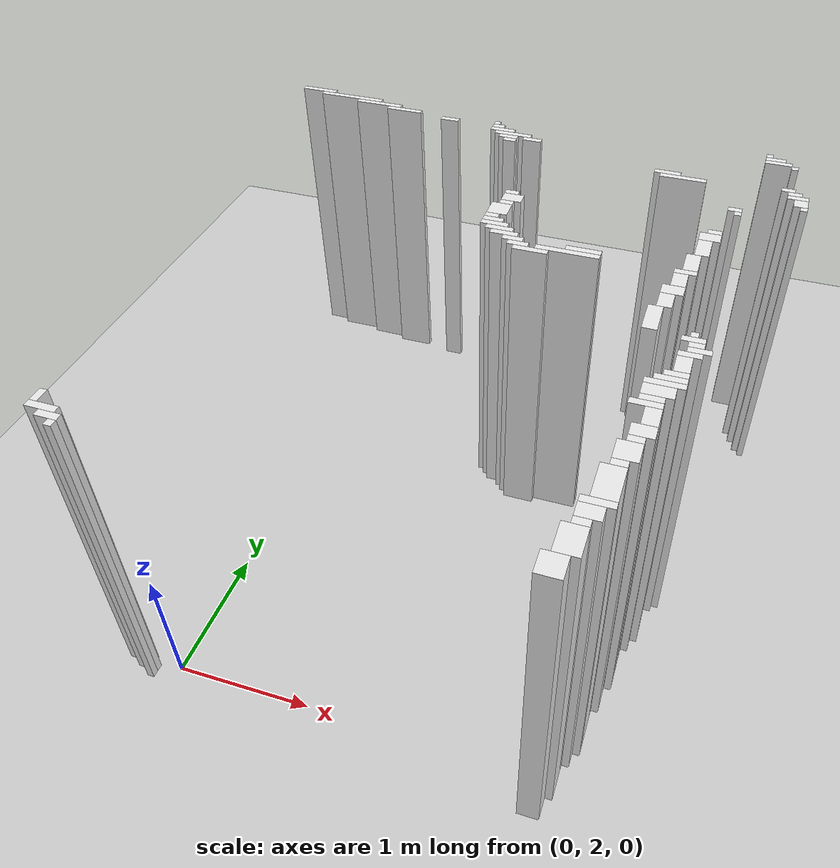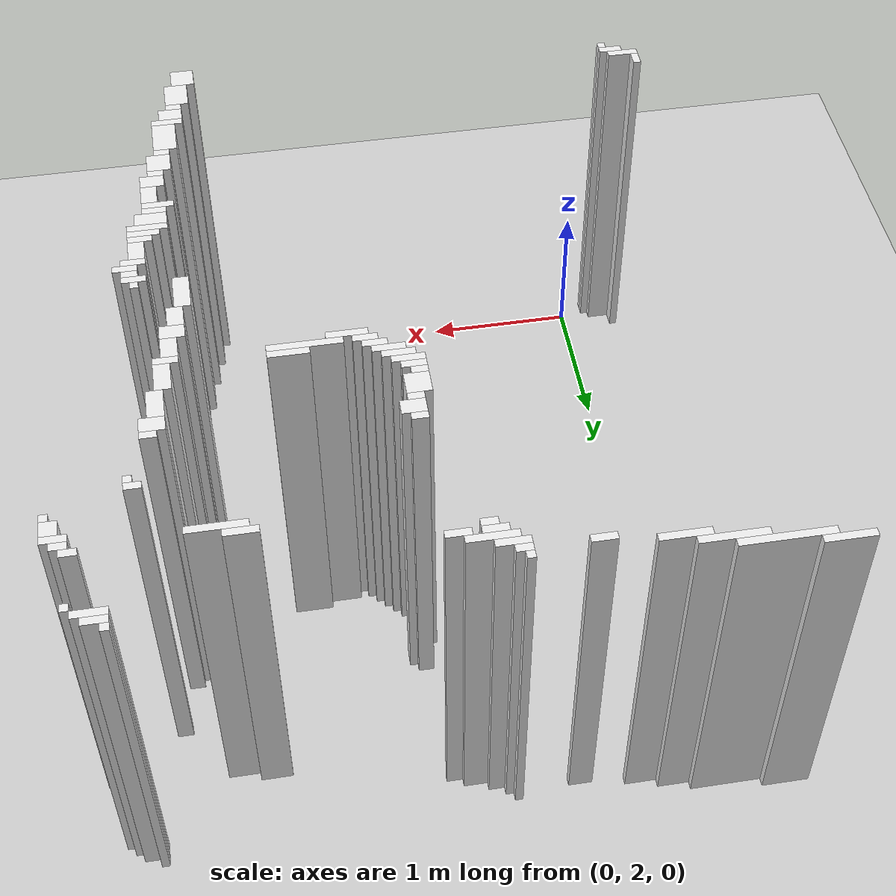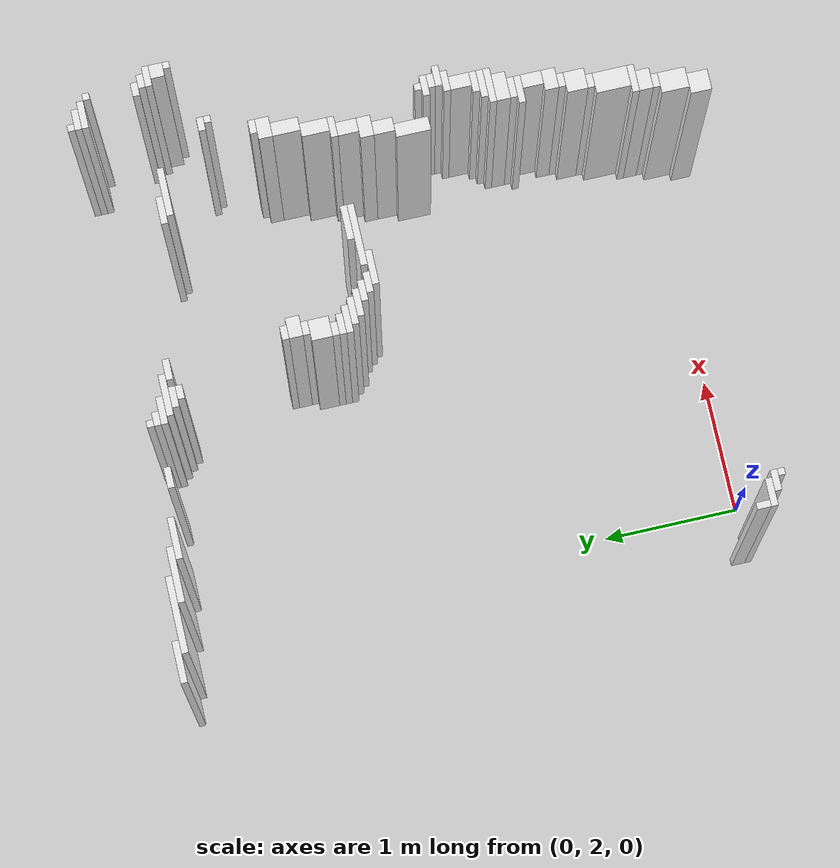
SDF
<sdf version="1.7">
 <world name="occupancy_map_world">
  <model name="ground_plane">
   <static>true</static>
   <link name="link">
    <collision name="collision">
     <geometry><plane><normal>0 0 1</normal><size>25.380000000000003 18.84</size></plane></geometry>
    </collision>
    <visual name="visual">
     <geometry><plane><normal>0 0 1</normal><size>25.380000000000003 18.84</size></plane></geometry>
     <material>
      <script><uri>file://media/materials/scripts/gazebo.material</uri><name>Gazebo/Grey</name></script>
     </material>
    </visual>
   </link>
  </model>
  <model name="wall_127">
   <static>true</static>
   <pose>-0.554000000000002 6.253000000000001 1.25 0 0 0.0</pose>
   <link name="link">
    <collision name="collision">
     <geometry><box><size>0.30000000000000004 0.05 2.5</size></box></geometry>
    </collision>
    <visual name="visual">
     <geometry><box><size>0.30000000000000004 0.05 2.5</size></box></geometry>
     <material>
      <script><uri>file://media/materials/scripts/gazebo.material</uri><name>Gazebo/White</name></script>
     </material>
    </visual>
   </link>
  </model>
  <model name="wall_128">
   <static>true</static>
   <pose>-0.2289999999999992 6.203 1.25 0 0 0.0</pose>
   <link name="link">
    <collision name="collision"><geometry><box><size>0.55 0.05 2.5</size></box></geometry></collision>
    <visual name="visual">
     <geometry><box><size>0.55 0.05 2.5</size></box></geometry>
     <material>
      <script><uri>file://media/materials/scripts/gazebo.material</uri><name>Gazebo/White</name></script>
     </material>
    </visual>
   </link>
  </model>
  <model name="wall_129">
   <static>true</static>
   <pose>3.3210000000000015 6.203 1.25 0 0 0.0</pose>
   <link name="link">
    <collision name="collision"><geometry><box><size>0.05 0.05 2.5</size></box></geometry></collision>
    <visual name="visual">
     <geometry><box><size>0.05 0.05 2.5</size></box></geometry>
     <material>
      <script><uri>file://media/materials/scripts/gazebo.material</uri><name>Gazebo/White</name></script>
     </material>
    </visual>
   </link>
  </model>
  <model name="wall_131">
   <static>true</static>
   <pose>0.045999999999999375 6.153 1.25 0 0 0.0</pose>
   <link name="link">
    <collision name="collision"><geometry><box><size>0.4 0.05 2.5</size></box></geometry></collision>
    <visual name="visual">
     <geometry><box><size>0.4 0.05 2.5</size></box></geometry>
     <material>
      <script><uri>file://media/materials/scripts/gazebo.material</uri><name>Gazebo/White</name></script>
     </material>
    </visual>
   </link>
  </model>
  <model name="wall_132">
   <static>true</static>
   <pose>3.3709999999999987 6.153 1.25 0 0 0.0</pose>
   <link name="link">
    <collision name="collision">
     <geometry><box><size>0.15000000000000002 0.05 2.5</size></box></geometry>
    </collision>
    <visual name="visual">
     <geometry><box><size>0.15000000000000002 0.05 2.5</size></box></geometry>
     <material>
      <script><uri>file://media/materials/scripts/gazebo.material</uri><name>Gazebo/White</name></script>
     </material>
    </visual>
   </link>
  </model>
  <model name="wall_133">
   <static>true</static>
   <pose>0.2959999999999994 6.103000000000001 1.25 0 0 0.0</pose>
   <link name="link">
    <collision name="collision">
     <geometry><box><size>0.30000000000000004 0.05 2.5</size></box></geometry>
    </collision>
    <visual name="visual">
     <geometry><box><size>0.30000000000000004 0.05 2.5</size></box></geometry>
     <material>
      <script><uri>file://media/materials/scripts/gazebo.material</uri><name>Gazebo/White</name></script>
     </material>
    </visual>
   </link>
  </model>
  <model name="wall_134">
   <static>true</static>
   <pose>1.1209999999999987 6.103000000000001 1.25 0 0 0.0</pose>
   <link name="link">
    <collision name="collision"><geometry><box><size>0.05 0.05 2.5</size></box></geometry></collision>
    <visual name="visual">
     <geometry><box><size>0.05 0.05 2.5</size></box></geometry>
     <material>
      <script><uri>file://media/materials/scripts/gazebo.material</uri><name>Gazebo/White</name></script>
     </material>
    </visual>
   </link>
  </model>
  <model name="wall_135">
   <static>true</static>
   <pose>3.396000000000001 6.103000000000001 1.25 0 0 0.0</pose>
   <link name="link">
    <collision name="collision"><geometry><box><size>0.2 0.05 2.5</size></box></geometry></collision>
    <visual name="visual">
     <geometry><box><size>0.2 0.05 2.5</size></box></geometry>
     <material>
      <script><uri>file://media/materials/scripts/gazebo.material</uri><name>Gazebo/White</name></script>
     </material>
    </visual>
   </link>
  </model>
  <model name="wall_136">
   <static>true</static>
   <pose>0.7210000000000001 6.053 1.25 0 0 0.0</pose>
   <link name="link">
    <collision name="collision">
     <geometry><box><size>0.15000000000000002 0.05 2.5</size></box></geometry>
    </collision>
    <visual name="visual">
     <geometry><box><size>0.15000000000000002 0.05 2.5</size></box></geometry>
     <material>
      <script><uri>file://media/materials/scripts/gazebo.material</uri><name>Gazebo/White</name></script>
     </material>
    </visual>
   </link>
  </model>
  <model name="wall_137">
   <static>true</static>
   <pose>1.1460000000000008 6.053 1.25 0 0 0.0</pose>
   <link name="link">
    <collision name="collision"><geometry><box><size>0.1 0.05 2.5</size></box></geometry></collision>
    <visual name="visual">
     <geometry><box><size>0.1 0.05 2.5</size></box></geometry>
     <material>
      <script><uri>file://media/materials/scripts/gazebo.material</uri><name>Gazebo/White</name></script>
     </material>
    </visual>
   </link>
  </model>
  <model name="wall_138">
   <static>true</static>
   <pose>3.521000000000001 6.053 1.25 0 0 0.0</pose>
   <link name="link">
    <collision name="collision"><geometry><box><size>0.05 0.05 2.5</size></box></geometry></collision>
    <visual name="visual">
     <geometry><box><size>0.05 0.05 2.5</size></box></geometry>
     <material>
      <script><uri>file://media/materials/scripts/gazebo.material</uri><name>Gazebo/White</name></script>
     </material>
    </visual>
   </link>
  </model>
  <model name="wall_141">
   <static>true</static>
   <pose>1.1960000000000015 6.003000000000001 1.25 0 0 0.0</pose>
   <link name="link">
    <collision name="collision"><geometry><box><size>0.2 0.05 2.5</size></box></geometry></collision>
    <visual name="visual">
     <geometry><box><size>0.2 0.05 2.5</size></box></geometry>
     <material>
      <script><uri>file://media/materials/scripts/gazebo.material</uri><name>Gazebo/White</name></script>
     </material>
    </visual>
   </link>
  </model>
  <model name="wall_142">
   <static>true</static>
   <pose>1.2959999999999994 5.953 1.25 0 0 0.0</pose>
   <link name="link">
    <collision name="collision">
     <geometry><box><size>0.30000000000000004 0.05 2.5</size></box></geometry>
    </collision>
    <visual name="visual">
     <geometry><box><size>0.30000000000000004 0.05 2.5</size></box></geometry>
     <material>
      <script><uri>file://media/materials/scripts/gazebo.material</uri><name>Gazebo/White</name></script>
     </material>
    </visual>
   </link>
  </model>
  <model name="wall_143">
   <static>true</static>
   <pose>1.2710000000000008 5.903 1.25 0 0 0.0</pose>
   <link name="link">
    <collision name="collision">
     <geometry><box><size>0.15000000000000002 0.05 2.5</size></box></geometry>
    </collision>
    <visual name="visual">
     <geometry><box><size>0.15000000000000002 0.05 2.5</size></box></geometry>
     <material>
      <script><uri>file://media/materials/scripts/gazebo.material</uri><name>Gazebo/White</name></script>
     </material>
    </visual>
   </link>
  </model>
  <model name="wall_144">
   <static>true</static>
   <pose>1.471 5.903 1.25 0 0 0.0</pose>
   <link name="link">
    <collision name="collision">
     <geometry><box><size>0.15000000000000002 0.05 2.5</size></box></geometry>
    </collision>
    <visual name="visual">
     <geometry><box><size>0.15000000000000002 0.05 2.5</size></box></geometry>
     <material>
      <script><uri>file://media/materials/scripts/gazebo.material</uri><name>Gazebo/White</name></script>
     </material>
    </visual>
   </link>
  </model>
  <model name="wall_145">
   <static>true</static>
   <pose>1.2959999999999994 5.853000000000001 1.25 0 0 0.0</pose>
   <link name="link">
    <collision name="collision"><geometry><box><size>0.1 0.05 2.5</size></box></geometry></collision>
    <visual name="visual">
     <geometry><box><size>0.1 0.05 2.5</size></box></geometry>
     <material>
      <script><uri>file://media/materials/scripts/gazebo.material</uri><name>Gazebo/White</name></script>
     </material>
    </visual>
   </link>
  </model>
  <model name="wall_147">
   <static>true</static>
   <pose>2.596 5.703 1.25 0 0 0.0</pose>
   <link name="link">
    <collision name="collision"><geometry><box><size>0.2 0.05 2.5</size></box></geometry></collision>
    <visual name="visual">
     <geometry><box><size>0.2 0.05 2.5</size></box></geometry>
     <material>
      <script><uri>file://media/materials/scripts/gazebo.material</uri><name>Gazebo/White</name></script>
     </material>
    </visual>
   </link>
  </model>
  <model name="wall_149">
   <static>true</static>
   <pose>3.4959999999999987 5.703 1.25 0 0 0.0</pose>
   <link name="link">
    <collision name="collision"><geometry><box><size>0.1 0.05 2.5</size></box></geometry></collision>
    <visual name="visual">
     <geometry><box><size>0.1 0.05 2.5</size></box></geometry>
     <material>
      <script><uri>file://media/materials/scripts/gazebo.material</uri><name>Gazebo/White</name></script>
     </material>
    </visual>
   </link>
  </model>
  <model name="wall_150">
   <static>true</static>
   <pose>2.721 5.653 1.25 0 0 0.0</pose>
   <link name="link">
    <collision name="collision">
     <geometry><box><size>0.35000000000000003 0.05 2.5</size></box></geometry>
    </collision>
    <visual name="visual">
     <geometry><box><size>0.35000000000000003 0.05 2.5</size></box></geometry>
     <material>
      <script><uri>file://media/materials/scripts/gazebo.material</uri><name>Gazebo/White</name></script>
     </material>
    </visual>
   </link>
  </model>
  <model name="wall_151">
   <static>true</static>
   <pose>3.5459999999999994 5.653 1.25 0 0 0.0</pose>
   <link name="link">
    <collision name="collision"><geometry><box><size>0.1 0.05 2.5</size></box></geometry></collision>
    <visual name="visual">
     <geometry><box><size>0.1 0.05 2.5</size></box></geometry>
     <material>
      <script><uri>file://media/materials/scripts/gazebo.material</uri><name>Gazebo/White</name></script>
     </material>
    </visual>
   </link>
  </model>
  <model name="wall_153">
   <static>true</static>
   <pose>3.5710000000000015 5.603000000000001 1.25 0 0 0.0</pose>
   <link name="link">
    <collision name="collision">
     <geometry><box><size>0.15000000000000002 0.05 2.5</size></box></geometry>
    </collision>
    <visual name="visual">
     <geometry><box><size>0.15000000000000002 0.05 2.5</size></box></geometry>
     <material>
      <script><uri>file://media/materials/scripts/gazebo.material</uri><name>Gazebo/White</name></script>
     </material>
    </visual>
   </link>
  </model>
  <model name="wall_155">
   <static>true</static>
   <pose>3.596 5.528 1.25 0 0 0.0</pose>
   <link name="link">
    <collision name="collision"><geometry><box><size>0.1 0.1 2.5</size></box></geometry></collision>
    <visual name="visual">
     <geometry><box><size>0.1 0.1 2.5</size></box></geometry>
     <material>
      <script><uri>file://media/materials/scripts/gazebo.material</uri><name>Gazebo/White</name></script>
     </material>
    </visual>
   </link>
  </model>
  <model name="wall_161">
   <static>true</static>
   <pose>3.6209999999999987 5.453 1.25 0 0 0.0</pose>
   <link name="link">
    <collision name="collision"><geometry><box><size>0.05 0.05 2.5</size></box></geometry></collision>
    <visual name="visual">
     <geometry><box><size>0.05 0.05 2.5</size></box></geometry>
     <material>
      <script><uri>file://media/materials/scripts/gazebo.material</uri><name>Gazebo/White</name></script>
     </material>
    </visual>
   </link>
  </model>
  <model name="wall_166">
   <static>true</static>
   <pose>3.146000000000001 5.303 1.25 0 0 0.0</pose>
   <link name="link">
    <collision name="collision"><geometry><box><size>0.1 0.05 2.5</size></box></geometry></collision>
    <visual name="visual">
     <geometry><box><size>0.1 0.05 2.5</size></box></geometry>
     <material>
      <script><uri>file://media/materials/scripts/gazebo.material</uri><name>Gazebo/White</name></script>
     </material>
    </visual>
   </link>
  </model>
  <model name="wall_167">
   <static>true</static>
   <pose>3.1709999999999994 5.253000000000001 1.25 0 0 0.0</pose>
   <link name="link">
    <collision name="collision"><geometry><box><size>0.05 0.05 2.5</size></box></geometry></collision>
    <visual name="visual">
     <geometry><box><size>0.05 0.05 2.5</size></box></geometry>
     <material>
      <script><uri>file://media/materials/scripts/gazebo.material</uri><name>Gazebo/White</name></script>
     </material>
    </visual>
   </link>
  </model>
  <model name="wall_174">
   <static>true</static>
   <pose>1.5459999999999994 5.053 1.25 0 0 0.0</pose>
   <link name="link">
    <collision name="collision"><geometry><box><size>0.1 0.05 2.5</size></box></geometry></collision>
    <visual name="visual">
     <geometry><box><size>0.1 0.05 2.5</size></box></geometry>
     <material>
      <script><uri>file://media/materials/scripts/gazebo.material</uri><name>Gazebo/White</name></script>
     </material>
    </visual>
   </link>
  </model>
  <model name="wall_175">
   <static>true</static>
   <pose>1.5459999999999994 4.903 1.25 0 0 0.0</pose>
   <link name="link">
    <collision name="collision"><geometry><box><size>0.1 0.05 2.5</size></box></geometry></collision>
    <visual name="visual">
     <geometry><box><size>0.1 0.05 2.5</size></box></geometry>
     <material>
      <script><uri>file://media/materials/scripts/gazebo.material</uri><name>Gazebo/White</name></script>
     </material>
    </visual>
   </link>
  </model>
  <model name="wall_179">
   <static>true</static>
   <pose>1.5710000000000015 4.978000000000001 1.25 0 0 0.0</pose>
   <link name="link">
    <collision name="collision">
     <geometry><box><size>0.15000000000000002 0.1 2.5</size></box></geometry>
    </collision>
    <visual name="visual">
     <geometry><box><size>0.15000000000000002 0.1 2.5</size></box></geometry>
     <material>
      <script><uri>file://media/materials/scripts/gazebo.material</uri><name>Gazebo/White</name></script>
     </material>
    </visual>
   </link>
  </model>
  <model name="wall_182">
   <static>true</static>
   <pose>3.0459999999999994 4.953 1.25 0 0 0.0</pose>
   <link name="link">
    <collision name="collision"><geometry><box><size>0.1 0.05 2.5</size></box></geometry></collision>
    <visual name="visual">
     <geometry><box><size>0.1 0.05 2.5</size></box></geometry>
     <material>
      <script><uri>file://media/materials/scripts/gazebo.material</uri><name>Gazebo/White</name></script>
     </material>
    </visual>
   </link>
  </model>
  <model name="wall_183">
   <static>true</static>
   <pose>3.0459999999999994 3.4530000000000003 1.25 0 0 0.0</pose>
   <link name="link">
    <collision name="collision">
     <geometry><box><size>0.1 0.15000000000000002 2.5</size></box></geometry>
    </collision>
    <visual name="visual">
     <geometry><box><size>0.1 0.15000000000000002 2.5</size></box></geometry>
     <material>
      <script><uri>file://media/materials/scripts/gazebo.material</uri><name>Gazebo/White</name></script>
     </material>
    </visual>
   </link>
  </model>
  <model name="wall_185">
   <static>true</static>
   <pose>3.021000000000001 4.877999999999999 1.25 0 0 0.0</pose>
   <link name="link">
    <collision name="collision">
     <geometry><box><size>0.15000000000000002 0.1 2.5</size></box></geometry>
    </collision>
    <visual name="visual">
     <geometry><box><size>0.15000000000000002 0.1 2.5</size></box></geometry>
     <material>
      <script><uri>file://media/materials/scripts/gazebo.material</uri><name>Gazebo/White</name></script>
     </material>
    </visual>
   </link>
  </model>
  <model name="wall_186">
   <static>true</static>
   <pose>3.021000000000001 3.3529999999999998 1.25 0 0 0.0</pose>
   <link name="link">
    <collision name="collision">
     <geometry><box><size>0.15000000000000002 0.05 2.5</size></box></geometry>
    </collision>
    <visual name="visual">
     <geometry><box><size>0.15000000000000002 0.05 2.5</size></box></geometry>
     <material>
      <script><uri>file://media/materials/scripts/gazebo.material</uri><name>Gazebo/White</name></script>
     </material>
    </visual>
   </link>
  </model>
  <model name="wall_187">
   <static>true</static>
   <pose>1.5210000000000008 4.803 1.25 0 0 0.0</pose>
   <link name="link">
    <collision name="collision">
     <geometry><box><size>0.15000000000000002 0.15000000000000002 2.5</size></box></geometry>
    </collision>
    <visual name="visual">
     <geometry><box><size>0.15000000000000002 0.15000000000000002 2.5</size></box></geometry>
     <material>
      <script><uri>file://media/materials/scripts/gazebo.material</uri><name>Gazebo/White</name></script>
     </material>
    </visual>
   </link>
  </model>
  <model name="wall_188">
   <static>true</static>
   <pose>1.5210000000000008 4.653 1.25 0 0 0.0</pose>
   <link name="link">
    <collision name="collision">
     <geometry><box><size>0.15000000000000002 0.05 2.5</size></box></geometry>
    </collision>
    <visual name="visual">
     <geometry><box><size>0.15000000000000002 0.05 2.5</size></box></geometry>
     <material>
      <script><uri>file://media/materials/scripts/gazebo.material</uri><name>Gazebo/White</name></script>
     </material>
    </visual>
   </link>
  </model>
  <model name="wall_192">
   <static>true</static>
   <pose>2.9959999999999987 4.728000000000001 1.25 0 0 0.0</pose>
   <link name="link">
    <collision name="collision"><geometry><box><size>0.1 0.2 2.5</size></box></geometry></collision>
    <visual name="visual">
     <geometry><box><size>0.1 0.2 2.5</size></box></geometry>
     <material>
      <script><uri>file://media/materials/scripts/gazebo.material</uri><name>Gazebo/White</name></script>
     </material>
    </visual>
   </link>
  </model>
  <model name="wall_194">
   <static>true</static>
   <pose>1.4959999999999987 4.703 1.25 0 0 0.0</pose>
   <link name="link">
    <collision name="collision"><geometry><box><size>0.1 0.05 2.5</size></box></geometry></collision>
    <visual name="visual">
     <geometry><box><size>0.1 0.05 2.5</size></box></geometry>
     <material>
      <script><uri>file://media/materials/scripts/gazebo.material</uri><name>Gazebo/White</name></script>
     </material>
    </visual>
   </link>
  </model>
  <model name="wall_197">
   <static>true</static>
   <pose>1.5459999999999994 4.603000000000001 1.25 0 0 0.0</pose>
   <link name="link">
    <collision name="collision"><geometry><box><size>0.2 0.05 2.5</size></box></geometry></collision>
    <visual name="visual">
     <geometry><box><size>0.2 0.05 2.5</size></box></geometry>
     <material>
      <script><uri>file://media/materials/scripts/gazebo.material</uri><name>Gazebo/White</name></script>
     </material>
    </visual>
   </link>
  </model>
  <model name="wall_198">
   <static>true</static>
   <pose>2.9460000000000015 4.528 1.25 0 0 0.0</pose>
   <link name="link">
    <collision name="collision"><geometry><box><size>0.1 0.2 2.5</size></box></geometry></collision>
    <visual name="visual">
     <geometry><box><size>0.1 0.2 2.5</size></box></geometry>
     <material>
      <script><uri>file://media/materials/scripts/gazebo.material</uri><name>Gazebo/White</name></script>
     </material>
    </visual>
   </link>
  </model>
  <model name="wall_199">
   <static>true</static>
   <pose>2.9460000000000015 2.9530000000000003 1.25 0 0 0.0</pose>
   <link name="link">
    <collision name="collision">
     <geometry><box><size>0.1 0.15000000000000002 2.5</size></box></geometry>
    </collision>
    <visual name="visual">
     <geometry><box><size>0.1 0.15000000000000002 2.5</size></box></geometry>
     <material>
      <script><uri>file://media/materials/scripts/gazebo.material</uri><name>Gazebo/White</name></script>
     </material>
    </visual>
   </link>
  </model>
  <model name="wall_202">
   <static>true</static>
   <pose>1.596 4.553 1.25 0 0 0.0</pose>
   <link name="link">
    <collision name="collision"><geometry><box><size>0.2 0.05 2.5</size></box></geometry></collision>
    <visual name="visual">
     <geometry><box><size>0.2 0.05 2.5</size></box></geometry>
     <material>
      <script><uri>file://media/materials/scripts/gazebo.material</uri><name>Gazebo/White</name></script>
     </material>
    </visual>
   </link>
  </model>
  <model name="wall_204">
   <static>true</static>
   <pose>1.6460000000000008 4.502999999999999 1.25 0 0 0.0</pose>
   <link name="link">
    <collision name="collision"><geometry><box><size>0.2 0.05 2.5</size></box></geometry></collision>
    <visual name="visual">
     <geometry><box><size>0.2 0.05 2.5</size></box></geometry>
     <material>
      <script><uri>file://media/materials/scripts/gazebo.material</uri><name>Gazebo/White</name></script>
     </material>
    </visual>
   </link>
  </model>
  <model name="wall_206">
   <static>true</static>
   <pose>1.721 4.453 1.25 0 0 0.0</pose>
   <link name="link">
    <collision name="collision">
     <geometry><box><size>0.15000000000000002 0.05 2.5</size></box></geometry>
    </collision>
    <visual name="visual">
     <geometry><box><size>0.15000000000000002 0.05 2.5</size></box></geometry>
     <material>
      <script><uri>file://media/materials/scripts/gazebo.material</uri><name>Gazebo/White</name></script>
     </material>
    </visual>
   </link>
  </model>
  <model name="wall_208">
   <static>true</static>
   <pose>2.221 4.453 1.25 0 0 0.0</pose>
   <link name="link">
    <collision name="collision"><geometry><box><size>0.25 0.05 2.5</size></box></geometry></collision>
    <visual name="visual">
     <geometry><box><size>0.25 0.05 2.5</size></box></geometry>
     <material>
      <script><uri>file://media/materials/scripts/gazebo.material</uri><name>Gazebo/White</name></script>
     </material>
    </visual>
   </link>
  </model>
  <model name="wall_211">
   <static>true</static>
   <pose>1.7710000000000008 4.403 1.25 0 0 0.0</pose>
   <link name="link">
    <collision name="collision">
     <geometry><box><size>0.15000000000000002 0.05 2.5</size></box></geometry>
    </collision>
    <visual name="visual">
     <geometry><box><size>0.15000000000000002 0.05 2.5</size></box></geometry>
     <material>
      <script><uri>file://media/materials/scripts/gazebo.material</uri><name>Gazebo/White</name></script>
     </material>
    </visual>
   </link>
  </model>
  <model name="wall_213">
   <static>true</static>
   <pose>2.1209999999999987 4.403 1.25 0 0 0.0</pose>
   <link name="link">
    <collision name="collision"><geometry><box><size>0.45 0.05 2.5</size></box></geometry></collision>
    <visual name="visual">
     <geometry><box><size>0.45 0.05 2.5</size></box></geometry>
     <material>
      <script><uri>file://media/materials/scripts/gazebo.material</uri><name>Gazebo/White</name></script>
     </material>
    </visual>
   </link>
  </model>
  <model name="wall_214">
   <static>true</static>
   <pose>2.9209999999999994 4.403 1.25 0 0 0.0</pose>
   <link name="link">
    <collision name="collision">
     <geometry><box><size>0.15000000000000002 0.05 2.5</size></box></geometry>
    </collision>
    <visual name="visual">
     <geometry><box><size>0.15000000000000002 0.05 2.5</size></box></geometry>
     <material>
      <script><uri>file://media/materials/scripts/gazebo.material</uri><name>Gazebo/White</name></script>
     </material>
    </visual>
   </link>
  </model>
  <model name="wall_215">
   <static>true</static>
   <pose>2.9209999999999994 3.1029999999999998 1.25 0 0 0.0</pose>
   <link name="link">
    <collision name="collision">
     <geometry><box><size>0.15000000000000002 0.05 2.5</size></box></geometry>
    </collision>
    <visual name="visual">
     <geometry><box><size>0.15000000000000002 0.05 2.5</size></box></geometry>
     <material>
      <script><uri>file://media/materials/scripts/gazebo.material</uri><name>Gazebo/White</name></script>
     </material>
    </visual>
   </link>
  </model>
  <model name="wall_216">
   <static>true</static>
   <pose>2.9209999999999994 2.8280000000000003 1.25 0 0 0.0</pose>
   <link name="link">
    <collision name="collision">
     <geometry><box><size>0.15000000000000002 0.1 2.5</size></box></geometry>
    </collision>
    <visual name="visual">
     <geometry><box><size>0.15000000000000002 0.1 2.5</size></box></geometry>
     <material>
      <script><uri>file://media/materials/scripts/gazebo.material</uri><name>Gazebo/White</name></script>
     </material>
    </visual>
   </link>
  </model>
  <model name="wall_218">
   <static>true</static>
   <pose>1.8709999999999987 4.353000000000001 1.25 0 0 0.0</pose>
   <link name="link">
    <collision name="collision"><geometry><box><size>0.25 0.05 2.5</size></box></geometry></collision>
    <visual name="visual">
     <geometry><box><size>0.25 0.05 2.5</size></box></geometry>
     <material>
      <script><uri>file://media/materials/scripts/gazebo.material</uri><name>Gazebo/White</name></script>
     </material>
    </visual>
   </link>
  </model>
  <model name="wall_219">
   <static>true</static>
   <pose>2.896000000000001 4.303 1.25 0 0 0.0</pose>
   <link name="link">
    <collision name="collision">
     <geometry><box><size>0.1 0.15000000000000002 2.5</size></box></geometry>
    </collision>
    <visual name="visual">
     <geometry><box><size>0.1 0.15000000000000002 2.5</size></box></geometry>
     <material>
      <script><uri>file://media/materials/scripts/gazebo.material</uri><name>Gazebo/White</name></script>
     </material>
    </visual>
   </link>
  </model>
  <model name="wall_220">
   <static>true</static>
   <pose>2.896000000000001 2.753 1.25 0 0 0.0</pose>
   <link name="link">
    <collision name="collision"><geometry><box><size>0.1 0.05 2.5</size></box></geometry></collision>
    <visual name="visual">
     <geometry><box><size>0.1 0.05 2.5</size></box></geometry>
     <material>
      <script><uri>file://media/materials/scripts/gazebo.material</uri><name>Gazebo/White</name></script>
     </material>
    </visual>
   </link>
  </model>
  <model name="wall_223">
   <static>true</static>
   <pose>2.8709999999999987 4.178 1.25 0 0 0.0</pose>
   <link name="link">
    <collision name="collision">
     <geometry><box><size>0.15000000000000002 0.1 2.5</size></box></geometry>
    </collision>
    <visual name="visual">
     <geometry><box><size>0.15000000000000002 0.1 2.5</size></box></geometry>
     <material>
      <script><uri>file://media/materials/scripts/gazebo.material</uri><name>Gazebo/White</name></script>
     </material>
    </visual>
   </link>
  </model>
  <model name="wall_224">
   <static>true</static>
   <pose>2.8709999999999987 2.6529999999999996 1.25 0 0 0.0</pose>
   <link name="link">
    <collision name="collision">
     <geometry><box><size>0.15000000000000002 0.15000000000000002 2.5</size></box></geometry>
    </collision>
    <visual name="visual">
     <geometry><box><size>0.15000000000000002 0.15000000000000002 2.5</size></box></geometry>
     <material>
      <script><uri>file://media/materials/scripts/gazebo.material</uri><name>Gazebo/White</name></script>
     </material>
    </visual>
   </link>
  </model>
  <model name="wall_227">
   <static>true</static>
   <pose>2.846 4.053 1.25 0 0 0.0</pose>
   <link name="link">
    <collision name="collision">
     <geometry><box><size>0.1 0.15000000000000002 2.5</size></box></geometry>
    </collision>
    <visual name="visual">
     <geometry><box><size>0.1 0.15000000000000002 2.5</size></box></geometry>
     <material>
      <script><uri>file://media/materials/scripts/gazebo.material</uri><name>Gazebo/White</name></script>
     </material>
    </visual>
   </link>
  </model>
  <model name="wall_228">
   <static>true</static>
   <pose>2.846 2.553 1.25 0 0 0.0</pose>
   <link name="link">
    <collision name="collision"><geometry><box><size>0.1 0.05 2.5</size></box></geometry></collision>
    <visual name="visual">
     <geometry><box><size>0.1 0.05 2.5</size></box></geometry>
     <material>
      <script><uri>file://media/materials/scripts/gazebo.material</uri><name>Gazebo/White</name></script>
     </material>
    </visual>
   </link>
  </model>
  <model name="wall_229">
   <static>true</static>
   <pose>2.7959999999999994 3.8530000000000006 1.25 0 0 0.0</pose>
   <link name="link">
    <collision name="collision"><geometry><box><size>0.1 0.25 2.5</size></box></geometry></collision>
    <visual name="visual">
     <geometry><box><size>0.1 0.25 2.5</size></box></geometry>
     <material>
      <script><uri>file://media/materials/scripts/gazebo.material</uri><name>Gazebo/White</name></script>
     </material>
    </visual>
   </link>
  </model>
  <model name="wall_234">
   <static>true</static>
   <pose>3.0710000000000015 3.7529999999999992 1.25 0 0 0.0</pose>
   <link name="link">
    <collision name="collision"><geometry><box><size>0.05 0.05 2.5</size></box></geometry></collision>
    <visual name="visual">
     <geometry><box><size>0.05 0.05 2.5</size></box></geometry>
     <material>
      <script><uri>file://media/materials/scripts/gazebo.material</uri><name>Gazebo/White</name></script>
     </material>
    </visual>
   </link>
  </model>
  <model name="wall_236">
   <static>true</static>
   <pose>3.0710000000000015 3.7030000000000003 1.25 0 0 0.0</pose>
   <link name="link">
    <collision name="collision">
     <geometry><box><size>0.15000000000000002 0.05 2.5</size></box></geometry>
    </collision>
    <visual name="visual">
     <geometry><box><size>0.15000000000000002 0.05 2.5</size></box></geometry>
     <material>
      <script><uri>file://media/materials/scripts/gazebo.material</uri><name>Gazebo/White</name></script>
     </material>
    </visual>
   </link>
  </model>
  <model name="wall_237">
   <static>true</static>
   <pose>3.0710000000000015 3.553 1.25 0 0 0.0</pose>
   <link name="link">
    <collision name="collision">
     <geometry><box><size>0.15000000000000002 0.05 2.5</size></box></geometry>
    </collision>
    <visual name="visual">
     <geometry><box><size>0.15000000000000002 0.05 2.5</size></box></geometry>
     <material>
      <script><uri>file://media/materials/scripts/gazebo.material</uri><name>Gazebo/White</name></script>
     </material>
    </visual>
   </link>
  </model>
  <model name="wall_238">
   <static>true</static>
   <pose>3.096 3.6529999999999996 1.25 0 0 0.0</pose>
   <link name="link">
    <collision name="collision"><geometry><box><size>0.1 0.05 2.5</size></box></geometry></collision>
    <visual name="visual">
     <geometry><box><size>0.1 0.05 2.5</size></box></geometry>
     <material>
      <script><uri>file://media/materials/scripts/gazebo.material</uri><name>Gazebo/White</name></script>
     </material>
    </visual>
   </link>
  </model>
  <model name="wall_240">
   <static>true</static>
   <pose>3.1209999999999987 3.6029999999999998 1.25 0 0 0.0</pose>
   <link name="link">
    <collision name="collision">
     <geometry><box><size>0.15000000000000002 0.05 2.5</size></box></geometry>
    </collision>
    <visual name="visual">
     <geometry><box><size>0.15000000000000002 0.05 2.5</size></box></geometry>
     <material>
      <script><uri>file://media/materials/scripts/gazebo.material</uri><name>Gazebo/White</name></script>
     </material>
    </visual>
   </link>
  </model>
  <model name="wall_242">
   <static>true</static>
   <pose>2.9959999999999987 3.303 1.25 0 0 0.0</pose>
   <link name="link">
    <collision name="collision"><geometry><box><size>0.2 0.05 2.5</size></box></geometry></collision>
    <visual name="visual">
     <geometry><box><size>0.2 0.05 2.5</size></box></geometry>
     <material>
      <script><uri>file://media/materials/scripts/gazebo.material</uri><name>Gazebo/White</name></script>
     </material>
    </visual>
   </link>
  </model>
  <model name="wall_243">
   <static>true</static>
   <pose>2.971 3.253 1.25 0 0 0.0</pose>
   <link name="link">
    <collision name="collision"><geometry><box><size>0.25 0.05 2.5</size></box></geometry></collision>
    <visual name="visual">
     <geometry><box><size>0.25 0.05 2.5</size></box></geometry>
     <material>
      <script><uri>file://media/materials/scripts/gazebo.material</uri><name>Gazebo/White</name></script>
     </material>
    </visual>
   </link>
  </model>
  <model name="wall_245">
   <static>true</static>
   <pose>2.9460000000000015 3.178 1.25 0 0 0.0</pose>
   <link name="link">
    <collision name="collision"><geometry><box><size>0.2 0.1 2.5</size></box></geometry></collision>
    <visual name="visual">
     <geometry><box><size>0.2 0.1 2.5</size></box></geometry>
     <material>
      <script><uri>file://media/materials/scripts/gazebo.material</uri><name>Gazebo/White</name></script>
     </material>
    </visual>
   </link>
  </model>
  <model name="wall_246">
   <static>true</static>
   <pose>2.896000000000001 3.053 1.25 0 0 0.0</pose>
   <link name="link">
    <collision name="collision"><geometry><box><size>0.2 0.05 2.5</size></box></geometry></collision>
    <visual name="visual">
     <geometry><box><size>0.2 0.05 2.5</size></box></geometry>
     <material>
      <script><uri>file://media/materials/scripts/gazebo.material</uri><name>Gazebo/White</name></script>
     </material>
    </visual>
   </link>
  </model>
  <model name="wall_294">
   <static>true</static>
   <pose>2.8210000000000015 2.4029999999999996 1.25 0 0 0.0</pose>
   <link name="link">
    <collision name="collision">
     <geometry><box><size>0.15000000000000002 0.25 2.5</size></box></geometry>
    </collision>
    <visual name="visual">
     <geometry><box><size>0.15000000000000002 0.25 2.5</size></box></geometry>
     <material>
      <script><uri>file://media/materials/scripts/gazebo.material</uri><name>Gazebo/White</name></script>
     </material>
    </visual>
   </link>
  </model>
  <model name="wall_302">
   <static>true</static>
   <pose>2.7959999999999994 2.253 1.25 0 0 0.0</pose>
   <link name="link">
    <collision name="collision"><geometry><box><size>0.2 0.05 2.5</size></box></geometry></collision>
    <visual name="visual">
     <geometry><box><size>0.2 0.05 2.5</size></box></geometry>
     <material>
      <script><uri>file://media/materials/scripts/gazebo.material</uri><name>Gazebo/White</name></script>
     </material>
    </visual>
   </link>
  </model>
  <model name="wall_303">
   <static>true</static>
   <pose>2.771000000000001 2.178 1.25 0 0 0.0</pose>
   <link name="link">
    <collision name="collision">
     <geometry><box><size>0.15000000000000002 0.1 2.5</size></box></geometry>
    </collision>
    <visual name="visual">
     <geometry><box><size>0.15000000000000002 0.1 2.5</size></box></geometry>
     <material>
      <script><uri>file://media/materials/scripts/gazebo.material</uri><name>Gazebo/White</name></script>
     </material>
    </visual>
   </link>
  </model>
  <model name="wall_304">
   <static>true</static>
   <pose>-0.37900000000000134 2.0780000000000003 1.25 0 0 0.0</pose>
   <link name="link">
    <collision name="collision"><geometry><box><size>0.05 0.1 2.5</size></box></geometry></collision>
    <visual name="visual">
     <geometry><box><size>0.05 0.1 2.5</size></box></geometry>
     <material>
      <script><uri>file://media/materials/scripts/gazebo.material</uri><name>Gazebo/White</name></script>
     </material>
    </visual>
   </link>
  </model>
  <model name="wall_305">
   <static>true</static>
   <pose>2.7459999999999987 2.1029999999999998 1.25 0 0 0.0</pose>
   <link name="link">
    <collision name="collision"><geometry><box><size>0.1 0.05 2.5</size></box></geometry></collision>
    <visual name="visual">
     <geometry><box><size>0.1 0.05 2.5</size></box></geometry>
     <material>
      <script><uri>file://media/materials/scripts/gazebo.material</uri><name>Gazebo/White</name></script>
     </material>
    </visual>
   </link>
  </model>
  <model name="wall_306">
   <static>true</static>
   <pose>2.721 1.9779999999999998 1.25 0 0 0.0</pose>
   <link name="link">
    <collision name="collision">
     <geometry><box><size>0.15000000000000002 0.2 2.5</size></box></geometry>
    </collision>
    <visual name="visual">
     <geometry><box><size>0.15000000000000002 0.2 2.5</size></box></geometry>
     <material>
      <script><uri>file://media/materials/scripts/gazebo.material</uri><name>Gazebo/White</name></script>
     </material>
    </visual>
   </link>
  </model>
  <model name="wall_308">
   <static>true</static>
   <pose>-0.30400000000000205 2.003 1.25 0 0 0.0</pose>
   <link name="link">
    <collision name="collision"><geometry><box><size>0.2 0.05 2.5</size></box></geometry></collision>
    <visual name="visual">
     <geometry><box><size>0.2 0.05 2.5</size></box></geometry>
     <material>
      <script><uri>file://media/materials/scripts/gazebo.material</uri><name>Gazebo/White</name></script>
     </material>
    </visual>
   </link>
  </model>
  <model name="wall_313">
   <static>true</static>
   <pose>-0.2289999999999992 1.9530000000000003 1.25 0 0 0.0</pose>
   <link name="link">
    <collision name="collision">
     <geometry><box><size>0.15000000000000002 0.05 2.5</size></box></geometry>
    </collision>
    <visual name="visual">
     <geometry><box><size>0.15000000000000002 0.05 2.5</size></box></geometry>
     <material>
      <script><uri>file://media/materials/scripts/gazebo.material</uri><name>Gazebo/White</name></script>
     </material>
    </visual>
   </link>
  </model>
  <model name="wall_315">
   <static>true</static>
   <pose>-0.17900000000000205 1.9029999999999996 1.25 0 0 0.0</pose>
   <link name="link">
    <collision name="collision"><geometry><box><size>0.05 0.05 2.5</size></box></geometry></collision>
    <visual name="visual">
     <geometry><box><size>0.05 0.05 2.5</size></box></geometry>
     <material>
      <script><uri>file://media/materials/scripts/gazebo.material</uri><name>Gazebo/White</name></script>
     </material>
    </visual>
   </link>
  </model>
  <model name="wall_317">
   <static>true</static>
   <pose>2.6709999999999994 1.803 1.25 0 0 0.0</pose>
   <link name="link">
    <collision name="collision">
     <geometry><box><size>0.15000000000000002 0.15000000000000002 2.5</size></box></geometry>
    </collision>
    <visual name="visual">
     <geometry><box><size>0.15000000000000002 0.15000000000000002 2.5</size></box></geometry>
     <material>
      <script><uri>file://media/materials/scripts/gazebo.material</uri><name>Gazebo/White</name></script>
     </material>
    </visual>
   </link>
  </model>
  <model name="wall_486">
   <static>true</static>
   <pose>-0.37900000000000134 2.0780000000000003 1.25 0 0 0.0</pose>
   <link name="link">
    <collision name="collision"><geometry><box><size>0.05 0.1 2.5</size></box></geometry></collision>
    <visual name="visual">
     <geometry><box><size>0.05 0.1 2.5</size></box></geometry>
     <material>
      <script><uri>file://media/materials/scripts/gazebo.material</uri><name>Gazebo/White</name></script>
     </material>
    </visual>
   </link>
  </model>
  <model name="wall_487">
   <static>true</static>
   <pose>-0.17900000000000205 1.9029999999999996 1.25 0 0 0.0</pose>
   <link name="link">
    <collision name="collision"><geometry><box><size>0.05 0.05 2.5</size></box></geometry></collision>
    <visual name="visual">
     <geometry><box><size>0.05 0.05 2.5</size></box></geometry>
     <material>
      <script><uri>file://media/materials/scripts/gazebo.material</uri><name>Gazebo/White</name></script>
     </material>
    </visual>
   </link>
  </model>
  <model name="wall_488">
   <static>true</static>
   <pose>1.1209999999999987 6.103000000000001 1.25 0 0 0.0</pose>
   <link name="link">
    <collision name="collision"><geometry><box><size>0.05 0.05 2.5</size></box></geometry></collision>
    <visual name="visual">
     <geometry><box><size>0.05 0.05 2.5</size></box></geometry>
     <material>
      <script><uri>file://media/materials/scripts/gazebo.material</uri><name>Gazebo/White</name></script>
     </material>
    </visual>
   </link>
  </model>
  <model name="wall_490">
   <static>true</static>
   <pose>3.0710000000000015 3.7529999999999992 1.25 0 0 0.0</pose>
   <link name="link">
    <collision name="collision"><geometry><box><size>0.05 0.05 2.5</size></box></geometry></collision>
    <visual name="visual">
     <geometry><box><size>0.05 0.05 2.5</size></box></geometry>
     <material>
      <script><uri>file://media/materials/scripts/gazebo.material</uri><name>Gazebo/White</name></script>
     </material>
    </visual>
   </link>
  </model>
  <model name="wall_491">
   <static>true</static>
   <pose>3.1709999999999994 5.253000000000001 1.25 0 0 0.0</pose>
   <link name="link">
    <collision name="collision"><geometry><box><size>0.05 0.05 2.5</size></box></geometry></collision>
    <visual name="visual">
     <geometry><box><size>0.05 0.05 2.5</size></box></geometry>
     <material>
      <script><uri>file://media/materials/scripts/gazebo.material</uri><name>Gazebo/White</name></script>
     </material>
    </visual>
   </link>
  </model>
  <model name="wall_492">
   <static>true</static>
   <pose>3.3210000000000015 6.203 1.25 0 0 0.0</pose>
   <link name="link">
    <collision name="collision"><geometry><box><size>0.05 0.05 2.5</size></box></geometry></collision>
    <visual name="visual">
     <geometry><box><size>0.05 0.05 2.5</size></box></geometry>
     <material>
      <script><uri>file://media/materials/scripts/gazebo.material</uri><name>Gazebo/White</name></script>
     </material>
    </visual>
   </link>
  </model>
  <model name="wall_493">
   <static>true</static>
   <pose>3.521000000000001 6.053 1.25 0 0 0.0</pose>
   <link name="link">
    <collision name="collision"><geometry><box><size>0.05 0.05 2.5</size></box></geometry></collision>
    <visual name="visual">
     <geometry><box><size>0.05 0.05 2.5</size></box></geometry>
     <material>
      <script><uri>file://media/materials/scripts/gazebo.material</uri><name>Gazebo/White</name></script>
     </material>
    </visual>
   </link>
  </model>
  <model name="wall_495">
   <static>true</static>
   <pose>3.6209999999999987 5.453 1.25 0 0 0.0</pose>
   <link name="link">
    <collision name="collision"><geometry><box><size>0.05 0.05 2.5</size></box></geometry></collision>
    <visual name="visual">
     <geometry><box><size>0.05 0.05 2.5</size></box></geometry>
     <material>
      <script><uri>file://media/materials/scripts/gazebo.material</uri><name>Gazebo/White</name></script>
     </material>
    </visual>
   </link>
  </model>
 </world>
</sdf>
